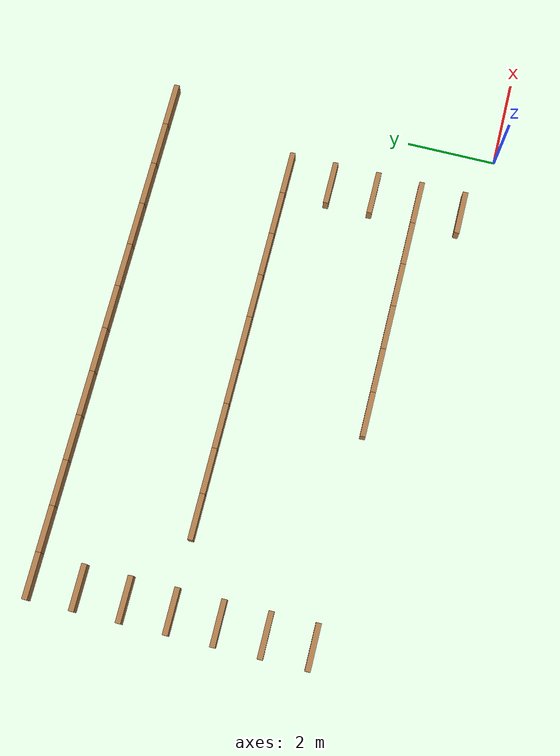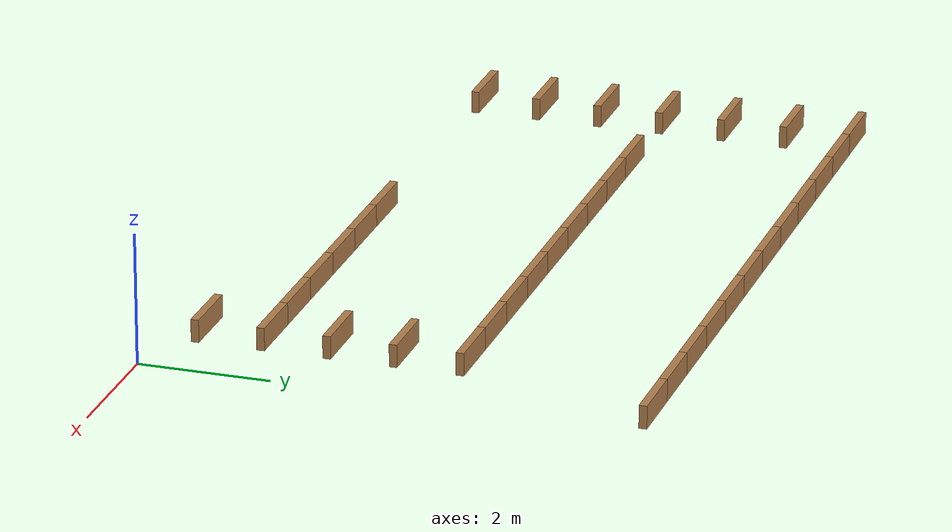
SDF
<sdf version="1.7">
 <world name="default">
  <include><uri>model://sun</uri></include>
  <model name="wall_r0_c0">
   <pose>-11.5 7.5 0.175 0 0 0</pose>
   <static>true</static>
   <link name="link">
    <collision name="col"><geometry><box><size>1.0 0.12 0.35</size></box></geometry></collision>
    <visual name="vis">
     <geometry><box><size>1.0 0.12 0.35</size></box></geometry>
     <material>
      <ambient>0.3 0.2 0.1 1</ambient>
      <diffuse>0.7 0.5 0.3 1</diffuse>
      <specular>0.1 0.1 0.1 1</specular>
     </material>
    </visual>
   </link>
  </model>
  <model name="wall_r0_c1">
   <pose>-10.5 7.5 0.175 0 0 0</pose>
   <static>true</static>
   <link name="link">
    <collision name="col"><geometry><box><size>1.0 0.12 0.35</size></box></geometry></collision>
    <visual name="vis">
     <geometry><box><size>1.0 0.12 0.35</size></box></geometry>
     <material>
      <ambient>0.3 0.2 0.1 1</ambient>
      <diffuse>0.7 0.5 0.3 1</diffuse>
      <specular>0.1 0.1 0.1 1</specular>
     </material>
    </visual>
   </link>
  </model>
  <model name="wall_r0_c2">
   <pose>-9.5 7.5 0.175 0 0 0</pose>
   <static>true</static>
   <link name="link">
    <collision name="col"><geometry><box><size>1.0 0.12 0.35</size></box></geometry></collision>
    <visual name="vis">
     <geometry><box><size>1.0 0.12 0.35</size></box></geometry>
     <material>
      <ambient>0.3 0.2 0.1 1</ambient>
      <diffuse>0.7 0.5 0.3 1</diffuse>
      <specular>0.1 0.1 0.1 1</specular>
     </material>
    </visual>
   </link>
  </model>
  <model name="wall_r0_c3">
   <pose>-8.5 7.5 0.175 0 0 0</pose>
   <static>true</static>
   <link name="link">
    <collision name="col"><geometry><box><size>1.0 0.12 0.35</size></box></geometry></collision>
    <visual name="vis">
     <geometry><box><size>1.0 0.12 0.35</size></box></geometry>
     <material>
      <ambient>0.3 0.2 0.1 1</ambient>
      <diffuse>0.7 0.5 0.3 1</diffuse>
      <specular>0.1 0.1 0.1 1</specular>
     </material>
    </visual>
   </link>
  </model>
  <model name="wall_r0_c4">
   <pose>-7.5 7.5 0.175 0 0 0</pose>
   <static>true</static>
   <link name="link">
    <collision name="col"><geometry><box><size>1.0 0.12 0.35</size></box></geometry></collision>
    <visual name="vis">
     <geometry><box><size>1.0 0.12 0.35</size></box></geometry>
     <material>
      <ambient>0.3 0.2 0.1 1</ambient>
      <diffuse>0.7 0.5 0.3 1</diffuse>
      <specular>0.1 0.1 0.1 1</specular>
     </material>
    </visual>
   </link>
  </model>
  <model name="wall_r0_c5">
   <pose>-6.5 7.5 0.175 0 0 0</pose>
   <static>true</static>
   <link name="link">
    <collision name="col"><geometry><box><size>1.0 0.12 0.35</size></box></geometry></collision>
    <visual name="vis">
     <geometry><box><size>1.0 0.12 0.35</size></box></geometry>
     <material>
      <ambient>0.3 0.2 0.1 1</ambient>
      <diffuse>0.7 0.5 0.3 1</diffuse>
      <specular>0.1 0.1 0.1 1</specular>
     </material>
    </visual>
   </link>
  </model>
  <model name="wall_r0_c6">
   <pose>-5.5 7.5 0.175 0 0 0</pose>
   <static>true</static>
   <link name="link">
    <collision name="col"><geometry><box><size>1.0 0.12 0.35</size></box></geometry></collision>
    <visual name="vis">
     <geometry><box><size>1.0 0.12 0.35</size></box></geometry>
     <material>
      <ambient>0.3 0.2 0.1 1</ambient>
      <diffuse>0.7 0.5 0.3 1</diffuse>
      <specular>0.1 0.1 0.1 1</specular>
     </material>
    </visual>
   </link>
  </model>
  <model name="wall_r0_c7">
   <pose>-4.5 7.5 0.175 0 0 0</pose>
   <static>true</static>
   <link name="link">
    <collision name="col"><geometry><box><size>1.0 0.12 0.35</size></box></geometry></collision>
    <visual name="vis">
     <geometry><box><size>1.0 0.12 0.35</size></box></geometry>
     <material>
      <ambient>0.3 0.2 0.1 1</ambient>
      <diffuse>0.7 0.5 0.3 1</diffuse>
      <specular>0.1 0.1 0.1 1</specular>
     </material>
    </visual>
   </link>
  </model>
  <model name="wall_r0_c8">
   <pose>-3.5 7.5 0.175 0 0 0</pose>
   <static>true</static>
   <link name="link">
    <collision name="col"><geometry><box><size>1.0 0.12 0.35</size></box></geometry></collision>
    <visual name="vis">
     <geometry><box><size>1.0 0.12 0.35</size></box></geometry>
     <material>
      <ambient>0.3 0.2 0.1 1</ambient>
      <diffuse>0.7 0.5 0.3 1</diffuse>
      <specular>0.1 0.1 0.1 1</specular>
     </material>
    </visual>
   </link>
  </model>
  <model name="wall_r0_c9">
   <pose>-2.5 7.5 0.175 0 0 0</pose>
   <static>true</static>
   <link name="link">
    <collision name="col"><geometry><box><size>1.0 0.12 0.35</size></box></geometry></collision>
    <visual name="vis">
     <geometry><box><size>1.0 0.12 0.35</size></box></geometry>
     <material>
      <ambient>0.3 0.2 0.1 1</ambient>
      <diffuse>0.7 0.5 0.3 1</diffuse>
      <specular>0.1 0.1 0.1 1</specular>
     </material>
    </visual>
   </link>
  </model>
  <model name="wall_r0_c10">
   <pose>-1.5 7.5 0.175 0 0 0</pose>
   <static>true</static>
   <link name="link">
    <collision name="col"><geometry><box><size>1.0 0.12 0.35</size></box></geometry></collision>
    <visual name="vis">
     <geometry><box><size>1.0 0.12 0.35</size></box></geometry>
     <material>
      <ambient>0.3 0.2 0.1 1</ambient>
      <diffuse>0.7 0.5 0.3 1</diffuse>
      <specular>0.1 0.1 0.1 1</specular>
     </material>
    </visual>
   </link>
  </model>
  <model name="wall_r0_c11">
   <pose>-0.5 7.5 0.175 0 0 0</pose>
   <static>true</static>
   <link name="link">
    <collision name="col"><geometry><box><size>1.0 0.12 0.35</size></box></geometry></collision>
    <visual name="vis">
     <geometry><box><size>1.0 0.12 0.35</size></box></geometry>
     <material>
      <ambient>0.3 0.2 0.1 1</ambient>
      <diffuse>0.7 0.5 0.3 1</diffuse>
      <specular>0.1 0.1 0.1 1</specular>
     </material>
    </visual>
   </link>
  </model>
  <model name="wall_r1_c0">
   <pose>-11.5 6.5 0.175 0 0 0</pose>
   <static>true</static>
   <link name="link">
    <collision name="col"><geometry><box><size>1.0 0.12 0.35</size></box></geometry></collision>
    <visual name="vis">
     <geometry><box><size>1.0 0.12 0.35</size></box></geometry>
     <material>
      <ambient>0.3 0.2 0.1 1</ambient>
      <diffuse>0.7 0.5 0.3 1</diffuse>
      <specular>0.1 0.1 0.1 1</specular>
     </material>
    </visual>
   </link>
  </model>
  <model name="wall_r2_c0">
   <pose>-11.5 5.5 0.175 0 0 0</pose>
   <static>true</static>
   <link name="link">
    <collision name="col"><geometry><box><size>1.0 0.12 0.35</size></box></geometry></collision>
    <visual name="vis">
     <geometry><box><size>1.0 0.12 0.35</size></box></geometry>
     <material>
      <ambient>0.3 0.2 0.1 1</ambient>
      <diffuse>0.7 0.5 0.3 1</diffuse>
      <specular>0.1 0.1 0.1 1</specular>
     </material>
    </visual>
   </link>
  </model>
  <model name="wall_r3_c0">
   <pose>-11.5 4.5 0.175 0 0 0</pose>
   <static>true</static>
   <link name="link">
    <collision name="col"><geometry><box><size>1.0 0.12 0.35</size></box></geometry></collision>
    <visual name="vis">
     <geometry><box><size>1.0 0.12 0.35</size></box></geometry>
     <material>
      <ambient>0.3 0.2 0.1 1</ambient>
      <diffuse>0.7 0.5 0.3 1</diffuse>
      <specular>0.1 0.1 0.1 1</specular>
     </material>
    </visual>
   </link>
  </model>
  <model name="wall_r3_c2">
   <pose>-9.5 4.5 0.175 0 0 0</pose>
   <static>true</static>
   <link name="link">
    <collision name="col"><geometry><box><size>1.0 0.12 0.35</size></box></geometry></collision>
    <visual name="vis">
     <geometry><box><size>1.0 0.12 0.35</size></box></geometry>
     <material>
      <ambient>0.3 0.2 0.1 1</ambient>
      <diffuse>0.7 0.5 0.3 1</diffuse>
      <specular>0.1 0.1 0.1 1</specular>
     </material>
    </visual>
   </link>
  </model>
  <model name="wall_r3_c3">
   <pose>-8.5 4.5 0.175 0 0 0</pose>
   <static>true</static>
   <link name="link">
    <collision name="col"><geometry><box><size>1.0 0.12 0.35</size></box></geometry></collision>
    <visual name="vis">
     <geometry><box><size>1.0 0.12 0.35</size></box></geometry>
     <material>
      <ambient>0.3 0.2 0.1 1</ambient>
      <diffuse>0.7 0.5 0.3 1</diffuse>
      <specular>0.1 0.1 0.1 1</specular>
     </material>
    </visual>
   </link>
  </model>
  <model name="wall_r3_c4">
   <pose>-7.5 4.5 0.175 0 0 0</pose>
   <static>true</static>
   <link name="link">
    <collision name="col"><geometry><box><size>1.0 0.12 0.35</size></box></geometry></collision>
    <visual name="vis">
     <geometry><box><size>1.0 0.12 0.35</size></box></geometry>
     <material>
      <ambient>0.3 0.2 0.1 1</ambient>
      <diffuse>0.7 0.5 0.3 1</diffuse>
      <specular>0.1 0.1 0.1 1</specular>
     </material>
    </visual>
   </link>
  </model>
  <model name="wall_r3_c5">
   <pose>-6.5 4.5 0.175 0 0 0</pose>
   <static>true</static>
   <link name="link">
    <collision name="col"><geometry><box><size>1.0 0.12 0.35</size></box></geometry></collision>
    <visual name="vis">
     <geometry><box><size>1.0 0.12 0.35</size></box></geometry>
     <material>
      <ambient>0.3 0.2 0.1 1</ambient>
      <diffuse>0.7 0.5 0.3 1</diffuse>
      <specular>0.1 0.1 0.1 1</specular>
     </material>
    </visual>
   </link>
  </model>
  <model name="wall_r3_c6">
   <pose>-5.5 4.5 0.175 0 0 0</pose>
   <static>true</static>
   <link name="link">
    <collision name="col"><geometry><box><size>1.0 0.12 0.35</size></box></geometry></collision>
    <visual name="vis">
     <geometry><box><size>1.0 0.12 0.35</size></box></geometry>
     <material>
      <ambient>0.3 0.2 0.1 1</ambient>
      <diffuse>0.7 0.5 0.3 1</diffuse>
      <specular>0.1 0.1 0.1 1</specular>
     </material>
    </visual>
   </link>
  </model>
  <model name="wall_r3_c7">
   <pose>-4.5 4.5 0.175 0 0 0</pose>
   <static>true</static>
   <link name="link">
    <collision name="col"><geometry><box><size>1.0 0.12 0.35</size></box></geometry></collision>
    <visual name="vis">
     <geometry><box><size>1.0 0.12 0.35</size></box></geometry>
     <material>
      <ambient>0.3 0.2 0.1 1</ambient>
      <diffuse>0.7 0.5 0.3 1</diffuse>
      <specular>0.1 0.1 0.1 1</specular>
     </material>
    </visual>
   </link>
  </model>
  <model name="wall_r3_c8">
   <pose>-3.5 4.5 0.175 0 0 0</pose>
   <static>true</static>
   <link name="link">
    <collision name="col"><geometry><box><size>1.0 0.12 0.35</size></box></geometry></collision>
    <visual name="vis">
     <geometry><box><size>1.0 0.12 0.35</size></box></geometry>
     <material>
      <ambient>0.3 0.2 0.1 1</ambient>
      <diffuse>0.7 0.5 0.3 1</diffuse>
      <specular>0.1 0.1 0.1 1</specular>
     </material>
    </visual>
   </link>
  </model>
  <model name="wall_r3_c9">
   <pose>-2.5 4.5 0.175 0 0 0</pose>
   <static>true</static>
   <link name="link">
    <collision name="col"><geometry><box><size>1.0 0.12 0.35</size></box></geometry></collision>
    <visual name="vis">
     <geometry><box><size>1.0 0.12 0.35</size></box></geometry>
     <material>
      <ambient>0.3 0.2 0.1 1</ambient>
      <diffuse>0.7 0.5 0.3 1</diffuse>
      <specular>0.1 0.1 0.1 1</specular>
     </material>
    </visual>
   </link>
  </model>
  <model name="wall_r3_c10">
   <pose>-1.5 4.5 0.175 0 0 0</pose>
   <static>true</static>
   <link name="link">
    <collision name="col"><geometry><box><size>1.0 0.12 0.35</size></box></geometry></collision>
    <visual name="vis">
     <geometry><box><size>1.0 0.12 0.35</size></box></geometry>
     <material>
      <ambient>0.3 0.2 0.1 1</ambient>
      <diffuse>0.7 0.5 0.3 1</diffuse>
      <specular>0.1 0.1 0.1 1</specular>
     </material>
    </visual>
   </link>
  </model>
  <model name="wall_r4_c0">
   <pose>-11.5 3.5 0.175 0 0 0</pose>
   <static>true</static>
   <link name="link">
    <collision name="col"><geometry><box><size>1.0 0.12 0.35</size></box></geometry></collision>
    <visual name="vis">
     <geometry><box><size>1.0 0.12 0.35</size></box></geometry>
     <material>
      <ambient>0.3 0.2 0.1 1</ambient>
      <diffuse>0.7 0.5 0.3 1</diffuse>
      <specular>0.1 0.1 0.1 1</specular>
     </material>
    </visual>
   </link>
  </model>
  <model name="wall_r4_c10">
   <pose>-1.5 3.5 0.175 0 0 0</pose>
   <static>true</static>
   <link name="link">
    <collision name="col"><geometry><box><size>1.0 0.12 0.35</size></box></geometry></collision>
    <visual name="vis">
     <geometry><box><size>1.0 0.12 0.35</size></box></geometry>
     <material>
      <ambient>0.3 0.2 0.1 1</ambient>
      <diffuse>0.7 0.5 0.3 1</diffuse>
      <specular>0.1 0.1 0.1 1</specular>
     </material>
    </visual>
   </link>
  </model>
  <model name="wall_r5_c0">
   <pose>-11.5 2.5 0.175 0 0 0</pose>
   <static>true</static>
   <link name="link">
    <collision name="col"><geometry><box><size>1.0 0.12 0.35</size></box></geometry></collision>
    <visual name="vis">
     <geometry><box><size>1.0 0.12 0.35</size></box></geometry>
     <material>
      <ambient>0.3 0.2 0.1 1</ambient>
      <diffuse>0.7 0.5 0.3 1</diffuse>
      <specular>0.1 0.1 0.1 1</specular>
     </material>
    </visual>
   </link>
  </model>
  <model name="wall_r5_c10">
   <pose>-1.5 2.5 0.175 0 0 0</pose>
   <static>true</static>
   <link name="link">
    <collision name="col"><geometry><box><size>1.0 0.12 0.35</size></box></geometry></collision>
    <visual name="vis">
     <geometry><box><size>1.0 0.12 0.35</size></box></geometry>
     <material>
      <ambient>0.3 0.2 0.1 1</ambient>
      <diffuse>0.7 0.5 0.3 1</diffuse>
      <specular>0.1 0.1 0.1 1</specular>
     </material>
    </visual>
   </link>
  </model>
  <model name="wall_r6_c0">
   <pose>-11.5 1.5 0.175 0 0 0</pose>
   <static>true</static>
   <link name="link">
    <collision name="col"><geometry><box><size>1.0 0.12 0.35</size></box></geometry></collision>
    <visual name="vis">
     <geometry><box><size>1.0 0.12 0.35</size></box></geometry>
     <material>
      <ambient>0.3 0.2 0.1 1</ambient>
      <diffuse>0.7 0.5 0.3 1</diffuse>
      <specular>0.1 0.1 0.1 1</specular>
     </material>
    </visual>
   </link>
  </model>
  <model name="wall_r6_c5">
   <pose>-6.5 1.5 0.175 0 0 0</pose>
   <static>true</static>
   <link name="link">
    <collision name="col"><geometry><box><size>1.0 0.12 0.35</size></box></geometry></collision>
    <visual name="vis">
     <geometry><box><size>1.0 0.12 0.35</size></box></geometry>
     <material>
      <ambient>0.3 0.2 0.1 1</ambient>
      <diffuse>0.7 0.5 0.3 1</diffuse>
      <specular>0.1 0.1 0.1 1</specular>
     </material>
    </visual>
   </link>
  </model>
  <model name="wall_r6_c6">
   <pose>-5.5 1.5 0.175 0 0 0</pose>
   <static>true</static>
   <link name="link">
    <collision name="col"><geometry><box><size>1.0 0.12 0.35</size></box></geometry></collision>
    <visual name="vis">
     <geometry><box><size>1.0 0.12 0.35</size></box></geometry>
     <material>
      <ambient>0.3 0.2 0.1 1</ambient>
      <diffuse>0.7 0.5 0.3 1</diffuse>
      <specular>0.1 0.1 0.1 1</specular>
     </material>
    </visual>
   </link>
  </model>
  <model name="wall_r6_c7">
   <pose>-4.5 1.5 0.175 0 0 0</pose>
   <static>true</static>
   <link name="link">
    <collision name="col"><geometry><box><size>1.0 0.12 0.35</size></box></geometry></collision>
    <visual name="vis">
     <geometry><box><size>1.0 0.12 0.35</size></box></geometry>
     <material>
      <ambient>0.3 0.2 0.1 1</ambient>
      <diffuse>0.7 0.5 0.3 1</diffuse>
      <specular>0.1 0.1 0.1 1</specular>
     </material>
    </visual>
   </link>
  </model>
  <model name="wall_r6_c8">
   <pose>-3.5 1.5 0.175 0 0 0</pose>
   <static>true</static>
   <link name="link">
    <collision name="col"><geometry><box><size>1.0 0.12 0.35</size></box></geometry></collision>
    <visual name="vis">
     <geometry><box><size>1.0 0.12 0.35</size></box></geometry>
     <material>
      <ambient>0.3 0.2 0.1 1</ambient>
      <diffuse>0.7 0.5 0.3 1</diffuse>
      <specular>0.1 0.1 0.1 1</specular>
     </material>
    </visual>
   </link>
  </model>
  <model name="wall_r6_c9">
   <pose>-2.5 1.5 0.175 0 0 0</pose>
   <static>true</static>
   <link name="link">
    <collision name="col"><geometry><box><size>1.0 0.12 0.35</size></box></geometry></collision>
    <visual name="vis">
     <geometry><box><size>1.0 0.12 0.35</size></box></geometry>
     <material>
      <ambient>0.3 0.2 0.1 1</ambient>
      <diffuse>0.7 0.5 0.3 1</diffuse>
      <specular>0.1 0.1 0.1 1</specular>
     </material>
    </visual>
   </link>
  </model>
  <model name="wall_r6_c10">
   <pose>-1.5 1.5 0.175 0 0 0</pose>
   <static>true</static>
   <link name="link">
    <collision name="col"><geometry><box><size>1.0 0.12 0.35</size></box></geometry></collision>
    <visual name="vis">
     <geometry><box><size>1.0 0.12 0.35</size></box></geometry>
     <material>
      <ambient>0.3 0.2 0.1 1</ambient>
      <diffuse>0.7 0.5 0.3 1</diffuse>
      <specular>0.1 0.1 0.1 1</specular>
     </material>
    </visual>
   </link>
  </model>
  <model name="wall_r7_c10">
   <pose>-1.5 0.5 0.175 0 0 0</pose>
   <static>true</static>
   <link name="link">
    <collision name="col"><geometry><box><size>1.0 0.12 0.35</size></box></geometry></collision>
    <visual name="vis">
     <geometry><box><size>1.0 0.12 0.35</size></box></geometry>
     <material>
      <ambient>0.3 0.2 0.1 1</ambient>
      <diffuse>0.7 0.5 0.3 1</diffuse>
      <specular>0.1 0.1 0.1 1</specular>
     </material>
    </visual>
   </link>
  </model>
 </world>
</sdf>
